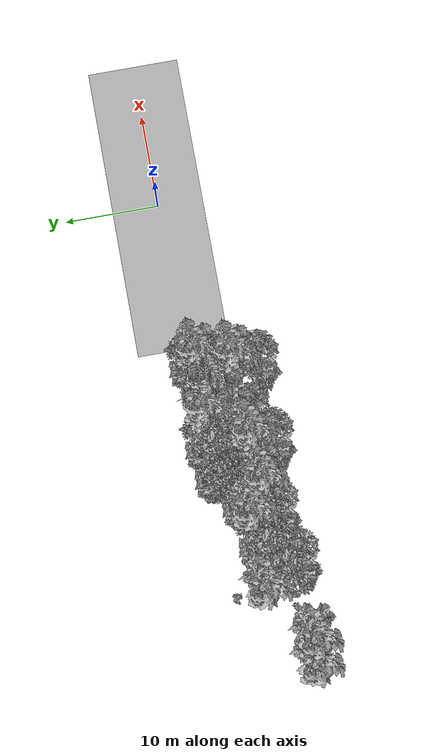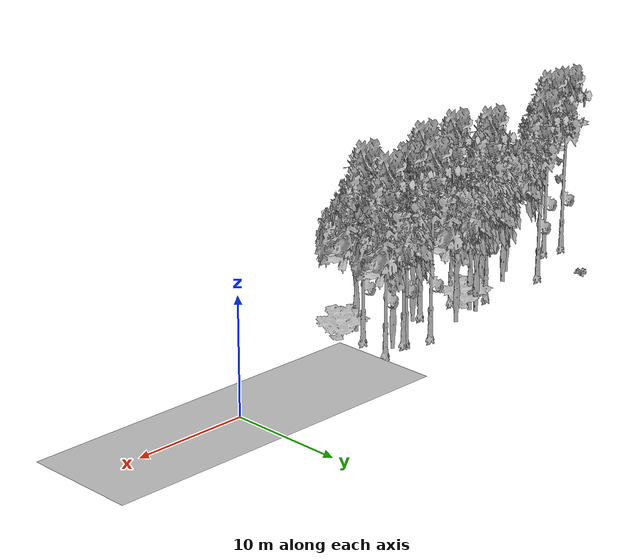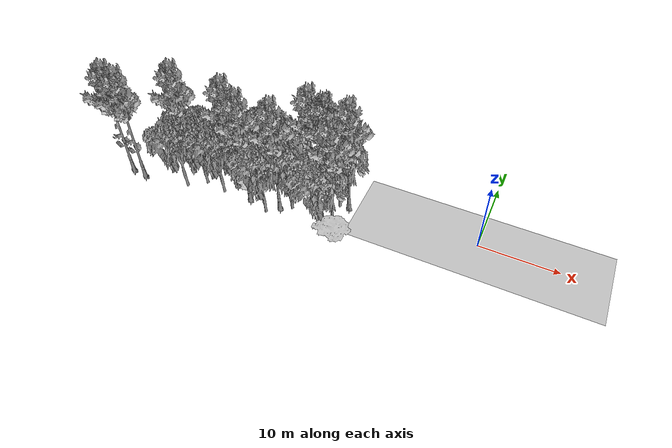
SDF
<sdf version="1.7">
 <world name="default">
  <model name="ground_plane">
   <static>1</static>
   <link name="link">
    <collision name="collision">
     <pose>-50 0 0 0 -0 0</pose>
     <geometry><plane><normal>0 0 1</normal><size>100 100</size></plane></geometry>
     <surface><contact><ode><min_depth>0.01</min_depth><max_vel>0</max_vel></ode></contact></surface>
    </collision>
    <visual name="grass">
     <cast_shadows>0</cast_shadows>
     <geometry>
      <mesh>
       <scale>0.5814285714285714 0.18142857142857144 0.1</scale>
       <uri>file://grass_plane/meshes/grass_plane.dae</uri>
      </mesh>
     </geometry>
    </visual>
   </link>
  </model>
  <model name="Tree 17">
   <static>1</static>
   <pose>-18.04329894086951 -1.0568003276767577 0 1.57079 -0 0</pose>
   <link name="link">
    <collision name="collision">
     <geometry><mesh><scale>3.5 5 3.5</scale><uri>model://tree_2/meshes/tree_2.obj</uri></mesh></geometry>
    </collision>
    <visual name="visual">
     <geometry><mesh><scale>3.5 5 3.5</scale><uri>model://tree_2/meshes/tree_2.obj</uri></mesh></geometry>
    </visual>
   </link>
  </model>
  <model name="Tree 18">
   <static>1</static>
   <pose>-32.004453880624155 -3.203963583699915 0 1.57079 -0 0</pose>
   <link name="link">
    <collision name="collision">
     <geometry><mesh><scale>3.5 5 3.5</scale><uri>model://tree_9/meshes/tree_9.obj</uri></mesh></geometry>
    </collision>
    <visual name="visual">
     <geometry><mesh><scale>3.5 5 3.5</scale><uri>model://tree_9/meshes/tree_9.obj</uri></mesh></geometry>
    </visual>
   </link>
  </model>
  <model name="Tree 30">
   <static>1</static>
   <pose>-46.451018027933905 -6.5726264874756755 0 1.57079 -0 0</pose>
   <link name="link">
    <collision name="collision">
     <geometry><mesh><scale>3.5 5 3.5</scale><uri>model://tree_9/meshes/tree_9.obj</uri></mesh></geometry>
    </collision>
    <visual name="visual">
     <geometry><mesh><scale>3.5 5 3.5</scale><uri>model://tree_9/meshes/tree_9.obj</uri></mesh></geometry>
    </visual>
   </link>
  </model>
  <model name="Tree 43">
   <static>1</static>
   <pose>-22.003413727077035 -0.5513016951008716 0 1.57079 -0 0</pose>
   <link name="link">
    <collision name="collision">
     <geometry><mesh><scale>3.5 5 3.5</scale><uri>model://tree_9/meshes/tree_9.obj</uri></mesh></geometry>
    </collision>
    <visual name="visual">
     <geometry><mesh><scale>3.5 5 3.5</scale><uri>model://tree_9/meshes/tree_9.obj</uri></mesh></geometry>
    </visual>
   </link>
  </model>
  <model name="Tree 48">
   <static>1</static>
   <pose>-19.806803796304102 -1.2841629576280909 0 1.57079 -0 0</pose>
   <link name="link">
    <collision name="collision">
     <geometry><mesh><scale>3.5 5 3.5</scale><uri>model://tree_9/meshes/tree_9.obj</uri></mesh></geometry>
    </collision>
    <visual name="visual">
     <geometry><mesh><scale>3.5 5 3.5</scale><uri>model://tree_9/meshes/tree_9.obj</uri></mesh></geometry>
    </visual>
   </link>
  </model>
  <model name="Tree 49">
   <static>1</static>
   <pose>-19.52015672082067 -1.2997518263097714 0 1.57079 -0 0</pose>
   <link name="link">
    <collision name="collision">
     <geometry><mesh><scale>3.5 5 3.5</scale><uri>model://tree_9/meshes/tree_9.obj</uri></mesh></geometry>
    </collision>
    <visual name="visual">
     <geometry><mesh><scale>3.5 5 3.5</scale><uri>model://tree_9/meshes/tree_9.obj</uri></mesh></geometry>
    </visual>
   </link>
  </model>
  <model name="Tree 76">
   <static>1</static>
   <pose>-17.594310115672364 -4.083865694465267 0 1.57079 -0 0</pose>
   <link name="link">
    <collision name="collision">
     <geometry><mesh><scale>3.5 5 3.5</scale><uri>model://tree_9/meshes/tree_9.obj</uri></mesh></geometry>
    </collision>
    <visual name="visual">
     <geometry><mesh><scale>3.5 5 3.5</scale><uri>model://tree_9/meshes/tree_9.obj</uri></mesh></geometry>
    </visual>
   </link>
  </model>
  <model name="Tree 106">
   <static>1</static>
   <pose>-39.076345653039546 -3.2334070671596873 0 1.57079 -0 0</pose>
   <link name="link">
    <collision name="collision">
     <geometry><mesh><scale>3.5 5 3.5</scale><uri>model://tree_9/meshes/tree_9.obj</uri></mesh></geometry>
    </collision>
    <visual name="visual">
     <geometry><mesh><scale>3.5 5 3.5</scale><uri>model://tree_9/meshes/tree_9.obj</uri></mesh></geometry>
    </visual>
   </link>
  </model>
  <model name="Tree 117">
   <static>1</static>
   <pose>-31.981748058142976 -3.6840381105944804 0 1.57079 -0 0</pose>
   <link name="link">
    <collision name="collision">
     <geometry><mesh><scale>3.5 5 3.5</scale><uri>model://tree_2/meshes/tree_2.obj</uri></mesh></geometry>
    </collision>
    <visual name="visual">
     <geometry><mesh><scale>3.5 5 3.5</scale><uri>model://tree_2/meshes/tree_2.obj</uri></mesh></geometry>
    </visual>
   </link>
  </model>
  <model name="Tree 131">
   <static>1</static>
   <pose>-28.945773769120372 -1.593304123937049 0 1.57079 -0 0</pose>
   <link name="link">
    <collision name="collision">
     <geometry><mesh><scale>3.5 5 3.5</scale><uri>model://tree_2/meshes/tree_2.obj</uri></mesh></geometry>
    </collision>
    <visual name="visual">
     <geometry><mesh><scale>3.5 5 3.5</scale><uri>model://tree_2/meshes/tree_2.obj</uri></mesh></geometry>
    </visual>
   </link>
  </model>
  <model name="Tree 139">
   <static>1</static>
   <pose>-16.95535722290735 -5.941616544343278 0 1.57079 -0 0</pose>
   <link name="link">
    <collision name="collision">
     <geometry><mesh><scale>3 2 3</scale><uri>model://tree_3/meshes/tree_3.obj</uri></mesh></geometry>
    </collision>
    <visual name="visual">
     <geometry><mesh><scale>3 2 3</scale><uri>model://tree_3/meshes/tree_3.obj</uri></mesh></geometry>
    </visual>
   </link>
  </model>
  <model name="Tree 147">
   <static>1</static>
   <pose>-28.818314188075348 -2.183991372289224 0 1.57079 -0 0</pose>
   <link name="link">
    <collision name="collision">
     <geometry><mesh><scale>3.5 5 3.5</scale><uri>model://tree_2/meshes/tree_2.obj</uri></mesh></geometry>
    </collision>
    <visual name="visual">
     <geometry><mesh><scale>3.5 5 3.5</scale><uri>model://tree_2/meshes/tree_2.obj</uri></mesh></geometry>
    </visual>
   </link>
  </model>
  <model name="Tree 165">
   <static>1</static>
   <pose>-29.12998584709241 -4.739253733952996 0 1.57079 -0 0</pose>
   <link name="link">
    <collision name="collision">
     <geometry><mesh><scale>3.5 5 3.5</scale><uri>model://tree_9/meshes/tree_9.obj</uri></mesh></geometry>
    </collision>
    <visual name="visual">
     <geometry><mesh><scale>3.5 5 3.5</scale><uri>model://tree_9/meshes/tree_9.obj</uri></mesh></geometry>
    </visual>
   </link>
  </model>
  <model name="Tree 174">
   <static>1</static>
   <pose>-38.042088203505166 -6.057812541553552 0 1.57079 -0 0</pose>
   <link name="link">
    <collision name="collision">
     <geometry><mesh><scale>3.5 5 3.5</scale><uri>model://tree_2/meshes/tree_2.obj</uri></mesh></geometry>
    </collision>
    <visual name="visual">
     <geometry><mesh><scale>3.5 5 3.5</scale><uri>model://tree_2/meshes/tree_2.obj</uri></mesh></geometry>
    </visual>
   </link>
  </model>
  <model name="Tree 183">
   <static>1</static>
   <pose>-24.903934847279746 -4.423150204468982 0 1.57079 -0 0</pose>
   <link name="link">
    <collision name="collision">
     <geometry><mesh><scale>3.5 5 3.5</scale><uri>model://tree_9/meshes/tree_9.obj</uri></mesh></geometry>
    </collision>
    <visual name="visual">
     <geometry><mesh><scale>3.5 5 3.5</scale><uri>model://tree_9/meshes/tree_9.obj</uri></mesh></geometry>
    </visual>
   </link>
  </model>
  <model name="Tree 184">
   <static>1</static>
   <pose>-26.27628301594852 -5.793895560050084 0 1.57079 -0 0</pose>
   <link name="link">
    <collision name="collision">
     <geometry><mesh><scale>3.5 5 3.5</scale><uri>model://tree_2/meshes/tree_2.obj</uri></mesh></geometry>
    </collision>
    <visual name="visual">
     <geometry><mesh><scale>3.5 5 3.5</scale><uri>model://tree_2/meshes/tree_2.obj</uri></mesh></geometry>
    </visual>
   </link>
  </model>
  <model name="Tree 201">
   <static>1</static>
   <pose>-23.48376122846805 -3.895303511862867 0 1.57079 -0 0</pose>
   <link name="link">
    <collision name="collision">
     <geometry><mesh><scale>3.5 5 3.5</scale><uri>model://tree_2/meshes/tree_2.obj</uri></mesh></geometry>
    </collision>
    <visual name="visual">
     <geometry><mesh><scale>3.5 5 3.5</scale><uri>model://tree_2/meshes/tree_2.obj</uri></mesh></geometry>
    </visual>
   </link>
  </model>
  <model name="Tree 206">
   <static>1</static>
   <pose>-18.54633064750847 -5.741574308065774 0 1.57079 -0 0</pose>
   <link name="link">
    <collision name="collision">
     <geometry><mesh><scale>3.5 5 3.5</scale><uri>model://tree_2/meshes/tree_2.obj</uri></mesh></geometry>
    </collision>
    <visual name="visual">
     <geometry><mesh><scale>3.5 5 3.5</scale><uri>model://tree_2/meshes/tree_2.obj</uri></mesh></geometry>
    </visual>
   </link>
  </model>
  <model name="Tree 213">
   <static>1</static>
   <pose>-35.89851180886782 -4.55339076548711 0 1.57079 -0 0</pose>
   <link name="link">
    <collision name="collision">
     <geometry><mesh><scale>3.5 5 3.5</scale><uri>model://tree_2/meshes/tree_2.obj</uri></mesh></geometry>
    </collision>
    <visual name="visual">
     <geometry><mesh><scale>3.5 5 3.5</scale><uri>model://tree_2/meshes/tree_2.obj</uri></mesh></geometry>
    </visual>
   </link>
  </model>
  <model name="Tree 218">
   <static>1</static>
   <pose>-16.818179063893872 -0.7634802674558507 0 1.57079 -0 0</pose>
   <link name="link">
    <collision name="collision">
     <geometry><mesh><scale>3.5 5 3.5</scale><uri>model://tree_9/meshes/tree_9.obj</uri></mesh></geometry>
    </collision>
    <visual name="visual">
     <geometry><mesh><scale>3.5 5 3.5</scale><uri>model://tree_9/meshes/tree_9.obj</uri></mesh></geometry>
    </visual>
   </link>
  </model>
  <model name="Tree 230">
   <static>1</static>
   <pose>-29.44992718953126 -3.2491753442419515 0 1.57079 -0 0</pose>
   <link name="link">
    <collision name="collision">
     <geometry><mesh><scale>3 2 3</scale><uri>model://tree_3/meshes/tree_3.obj</uri></mesh></geometry>
    </collision>
    <visual name="visual">
     <geometry><mesh><scale>3 2 3</scale><uri>model://tree_3/meshes/tree_3.obj</uri></mesh></geometry>
    </visual>
   </link>
  </model>
  <model name="Tree 257">
   <static>1</static>
   <pose>-32.99718532007456 -4.986015539415924 0 1.57079 -0 0</pose>
   <link name="link">
    <collision name="collision">
     <geometry><mesh><scale>3.5 5 3.5</scale><uri>model://tree_2/meshes/tree_2.obj</uri></mesh></geometry>
    </collision>
    <visual name="visual">
     <geometry><mesh><scale>3.5 5 3.5</scale><uri>model://tree_2/meshes/tree_2.obj</uri></mesh></geometry>
    </visual>
   </link>
  </model>
  <model name="Tree 277">
   <static>1</static>
   <pose>-44.318974863442065 -6.877013279064544 0 1.57079 -0 0</pose>
   <link name="link">
    <collision name="collision">
     <geometry><mesh><scale>3.5 5 3.5</scale><uri>model://tree_9/meshes/tree_9.obj</uri></mesh></geometry>
    </collision>
    <visual name="visual">
     <geometry><mesh><scale>3.5 5 3.5</scale><uri>model://tree_9/meshes/tree_9.obj</uri></mesh></geometry>
    </visual>
   </link>
  </model>
  <model name="Tree 294">
   <static>1</static>
   <pose>-25.964862134974286 -1.1832672879108035 0 1.57079 -0 0</pose>
   <link name="link">
    <collision name="collision">
     <geometry><mesh><scale>3.5 5 3.5</scale><uri>model://tree_2/meshes/tree_2.obj</uri></mesh></geometry>
    </collision>
    <visual name="visual">
     <geometry><mesh><scale>3.5 5 3.5</scale><uri>model://tree_2/meshes/tree_2.obj</uri></mesh></geometry>
    </visual>
   </link>
  </model>
  <model name="Bush 0">
   <static>1</static>
   <pose>-42.37736300136783 -0.9382677679641986 0 1.57079 -0 0</pose>
   <link name="link">
    <collision name="collision">
     <geometry><mesh><scale>2 2 2</scale><uri>model://bush_2/meshes/bush_2.obj</uri></mesh></geometry>
     <surface><contact><collide_without_contact>false</collide_without_contact></contact></surface>
    </collision>
    <visual name="visual">
     <geometry><mesh><scale>2 2 2</scale><uri>model://bush_2/meshes/bush_2.obj</uri></mesh></geometry>
    </visual>
   </link>
  </model>
 </world>
</sdf>
